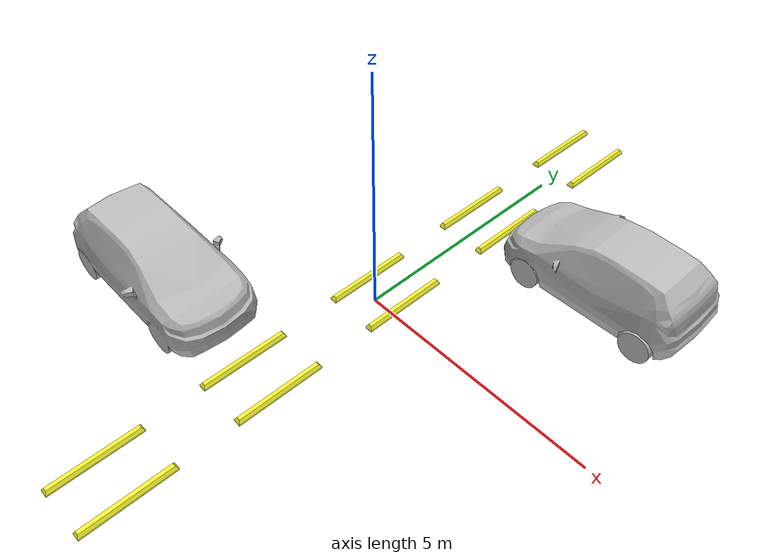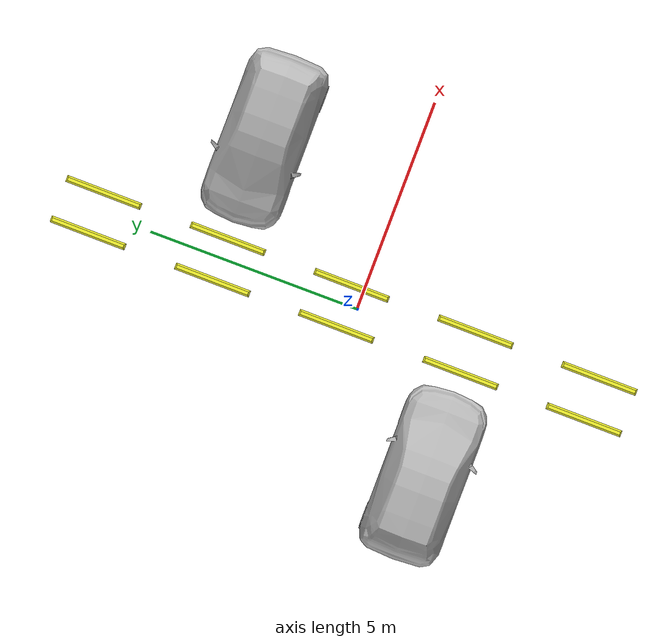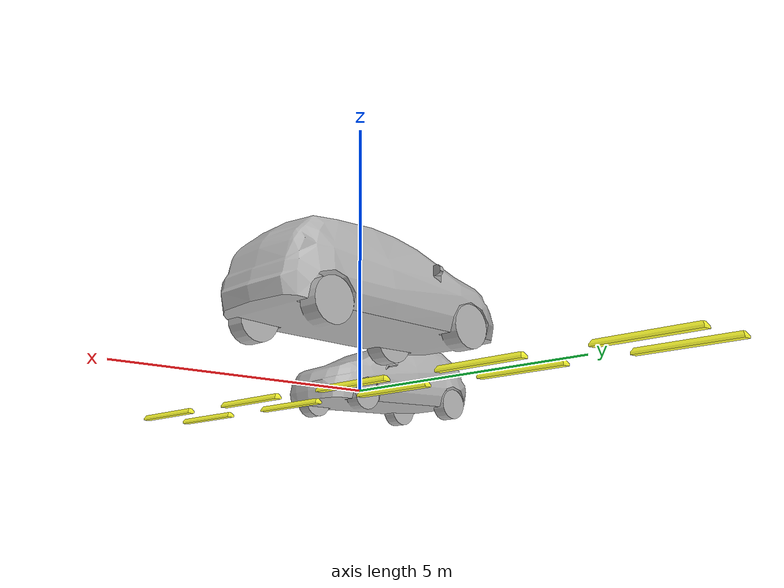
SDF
<?xml version='1.0'?>
<sdf version='1.7'>
  <model name='parking_version_9'>
    <model name='hatchback_blue'>
      <static>1</static>
      <link name='link'>
        <collision name='collision'>
          <pose>0 0 0 0 -0 1.5708</pose>
          <geometry>
            <mesh>
              <scale>0.0254 0.0254 0.0254</scale>
              <uri>model://hatchback_blue/meshes/hatchback.obj</uri>
            </mesh>
          </geometry>
        </collision>
        <visual name='visual'>
          <pose>0 0 0 0 -0 1.5708</pose>
          <geometry>
            <mesh>
              <scale>0.0254 0.0254 0.0254</scale>
              <uri>model://hatchback_blue/meshes/hatchback.obj</uri>
            </mesh>
          </geometry>
        </visual>
      </link>
      <pose>-3.31139 -2.70245 0 0 -0 0</pose>
    </model>
    <model name='hatchback_red'>
      <static>1</static>
      <link name='link'>
        <collision name='collision'>
          <pose>0 0 0 0 -0 1.5708</pose>
          <geometry>
            <mesh>
              <scale>0.0254 0.0254 0.0254</scale>
              <uri>model://hatchback_red/meshes/hatchback.obj</uri>
            </mesh>
          </geometry>
        </collision>
        <visual name='visual'>
          <pose>0 0 0 0 -0 1.5708</pose>
          <geometry>
            <mesh>
              <scale>0.0254 0.0254 0.0254</scale>
              <uri>model://hatchback_red/meshes/hatchback.obj</uri>
            </mesh>
          </geometry>
        </visual>
      </link>
      <pose>3.19037 3.30423 0 0 -0 3.14097</pose>
    </model>
    <model name='parking_version_4'>
      <model name='parking_version_3'>
        <model name='drc_practice_yellow_parking_block'>
          <static>1</static>
          <link name='link'>
            <visual name='visual'>
              <geometry>
                <mesh>
                  <uri>model://drc_practice_yellow_parking_block/meshes/block.dae</uri>
                </mesh>
              </geometry>
            </visual>
            <collision name='collision'>
              <geometry>
                <mesh>
                  <uri>model://drc_practice_yellow_parking_block/meshes/block.dae</uri>
                </mesh>
              </geometry>
              <max_contacts>10</max_contacts>
              <surface>
                <contact>
                  <ode/>
                </contact>
                <bounce/>
                <friction>
                  <torsional>
                    <ode/>
                  </torsional>
                  <ode/>
                </friction>
              </surface>
            </collision>
            <self_collide>0</self_collide>
            <enable_wind>0</enable_wind>
            <kinematic>0</kinematic>
          </link>
          <pose>0.413366 6.39123 0 0 -0 0</pose>
        </model>
        <model name='drc_practice_yellow_parking_block_clone_1'>
          <static>1</static>
          <link name='link'>
            <visual name='visual'>
              <geometry>
                <mesh>
                  <uri>model://drc_practice_yellow_parking_block/meshes/block.dae</uri>
                </mesh>
              </geometry>
            </visual>
            <collision name='collision'>
              <geometry>
                <mesh>
                  <uri>model://drc_practice_yellow_parking_block/meshes/block.dae</uri>
                </mesh>
              </geometry>
              <max_contacts>10</max_contacts>
              <surface>
                <contact>
                  <ode/>
                </contact>
                <bounce/>
                <friction>
                  <torsional>
                    <ode/>
                  </torsional>
                  <ode/>
                </friction>
              </surface>
            </collision>
            <self_collide>0</self_collide>
            <enable_wind>0</enable_wind>
            <kinematic>0</kinematic>
          </link>
          <pose>0.405987 3.37653 0 0 -0 0</pose>
        </model>
        <model name='drc_practice_yellow_parking_block_clone_1_clone'>
          <static>1</static>
          <link name='link'>
            <visual name='visual'>
              <geometry>
                <mesh>
                  <uri>model://drc_practice_yellow_parking_block/meshes/block.dae</uri>
                </mesh>
              </geometry>
            </visual>
            <collision name='collision'>
              <geometry>
                <mesh>
                  <uri>model://drc_practice_yellow_parking_block/meshes/block.dae</uri>
                </mesh>
              </geometry>
              <max_contacts>10</max_contacts>
              <surface>
                <contact>
                  <ode/>
                </contact>
                <bounce/>
                <friction>
                  <torsional>
                    <ode/>
                  </torsional>
                  <ode/>
                </friction>
              </surface>
            </collision>
            <self_collide>0</self_collide>
            <enable_wind>0</enable_wind>
            <kinematic>0</kinematic>
          </link>
          <pose>0.410253 0.377816 0 0 -0 0</pose>
        </model>
        <model name='drc_practice_yellow_parking_block_clone_1_clone_clone'>
          <static>1</static>
          <link name='link'>
            <visual name='visual'>
              <geometry>
                <mesh>
                  <uri>model://drc_practice_yellow_parking_block/meshes/block.dae</uri>
                </mesh>
              </geometry>
            </visual>
            <collision name='collision'>
              <geometry>
                <mesh>
                  <uri>model://drc_practice_yellow_parking_block/meshes/block.dae</uri>
                </mesh>
              </geometry>
              <max_contacts>10</max_contacts>
              <surface>
                <contact>
                  <ode/>
                </contact>
                <bounce/>
                <friction>
                  <torsional>
                    <ode/>
                  </torsional>
                  <ode/>
                </friction>
              </surface>
            </collision>
            <self_collide>0</self_collide>
            <enable_wind>0</enable_wind>
            <kinematic>0</kinematic>
          </link>
          <pose>0.410395 -2.63114 0 0 -0 0</pose>
        </model>
        <static>1</static>
        <allow_auto_disable>1</allow_auto_disable>
        <pose>-1.05927 0.530978 0 0 -0 0</pose>
      </model>
      <model name='drc_practice_yellow_parking_block'>
        <static>1</static>
        <link name='link'>
          <visual name='visual'>
            <geometry>
              <mesh>
                <uri>model://drc_practice_yellow_parking_block/meshes/block.dae</uri>
              </mesh>
            </geometry>
          </visual>
          <collision name='collision'>
            <geometry>
              <mesh>
                <uri>model://drc_practice_yellow_parking_block/meshes/block.dae</uri>
              </mesh>
            </geometry>
          </collision>
        </link>
        <pose>0.346026 -2.08831 0 0 -0 0</pose>
      </model>
      <model name='drc_practice_yellow_parking_block_clone'>
        <static>1</static>
        <link name='link'>
          <visual name='visual'>
            <geometry>
              <mesh>
                <uri>model://drc_practice_yellow_parking_block/meshes/block.dae</uri>
              </mesh>
            </geometry>
          </visual>
          <collision name='collision'>
            <geometry>
              <mesh>
                <uri>model://drc_practice_yellow_parking_block/meshes/block.dae</uri>
              </mesh>
            </geometry>
          </collision>
        </link>
        <pose>0.345776 -5.08491 0 0 -0 0</pose>
      </model>
      <model name='drc_practice_yellow_parking_block_clone_clone'>
        <static>1</static>
        <link name='link'>
          <visual name='visual'>
            <geometry>
              <mesh>
                <uri>model://drc_practice_yellow_parking_block/meshes/block.dae</uri>
              </mesh>
            </geometry>
          </visual>
          <collision name='collision'>
            <geometry>
              <mesh>
                <uri>model://drc_practice_yellow_parking_block/meshes/block.dae</uri>
              </mesh>
            </geometry>
          </collision>
        </link>
        <pose>0.342782 0.912728 0 0 -0 0</pose>
      </model>
      <model name='drc_practice_yellow_parking_block_clone_clone_0'>
        <static>1</static>
        <link name='link'>
          <visual name='visual'>
            <geometry>
              <mesh>
                <uri>model://drc_practice_yellow_parking_block/meshes/block.dae</uri>
              </mesh>
            </geometry>
          </visual>
          <collision name='collision'>
            <geometry>
              <mesh>
                <uri>model://drc_practice_yellow_parking_block/meshes/block.dae</uri>
              </mesh>
            </geometry>
          </collision>
        </link>
        <pose>0.344818 3.90903 0 0 -0 0</pose>
      </model>
      <model name='drc_practice_yellow_parking_block_clone_clone_0_clone'>
        <static>1</static>
        <link name='link'>
          <visual name='visual'>
            <geometry>
              <mesh>
                <uri>model://drc_practice_yellow_parking_block/meshes/block.dae</uri>
              </mesh>
            </geometry>
          </visual>
          <collision name='collision'>
            <geometry>
              <mesh>
                <uri>model://drc_practice_yellow_parking_block/meshes/block.dae</uri>
              </mesh>
            </geometry>
          </collision>
        </link>
        <pose>0.336101 6.91064 0 0 -0 0</pose>
      </model>
      <model name='drc_practice_yellow_parking_block_clone_clone_1'>
        <static>1</static>
        <link name='link'>
          <visual name='visual'>
            <geometry>
              <mesh>
                <uri>model://drc_practice_yellow_parking_block/meshes/block.dae</uri>
              </mesh>
            </geometry>
          </visual>
          <collision name='collision'>
            <geometry>
              <mesh>
                <uri>model://drc_practice_yellow_parking_block/meshes/block.dae</uri>
              </mesh>
            </geometry>
          </collision>
        </link>
        <pose>-0.656234 -5.09016 0 0 -0 0</pose>
      </model>
      <static>1</static>
      <allow_auto_disable>1</allow_auto_disable>
      <pose>0.120986 -0.601896 0 0 -0 0</pose>
    </model>
    <static>0</static>
    <allow_auto_disable>1</allow_auto_disable>
  </model>
</sdf>
